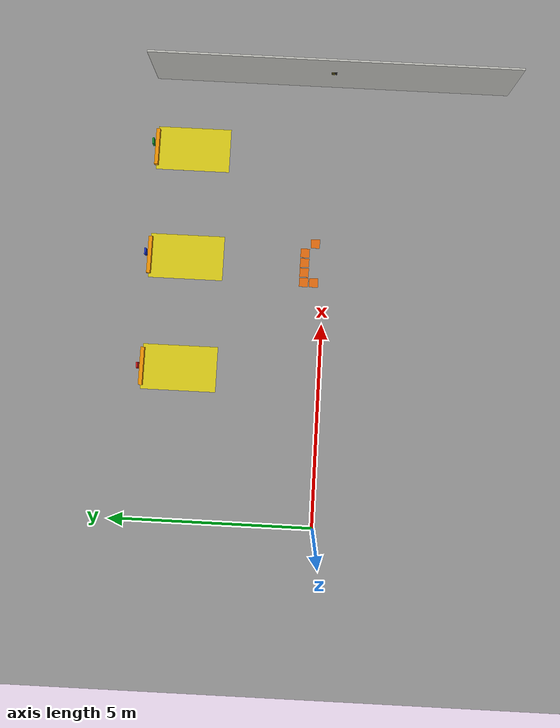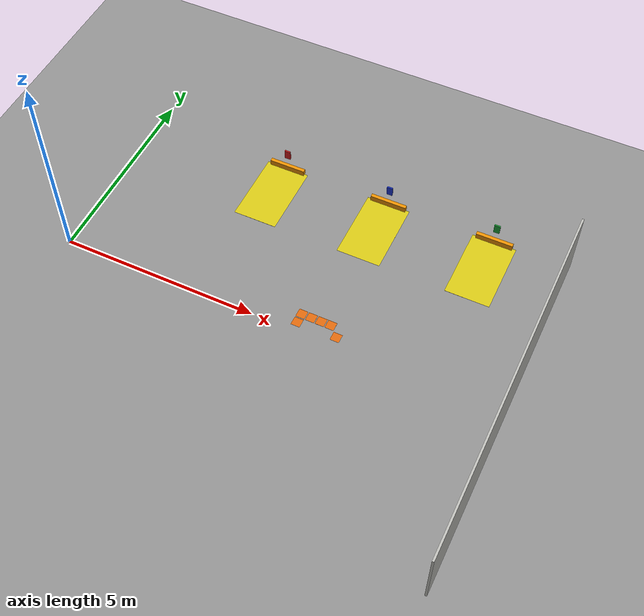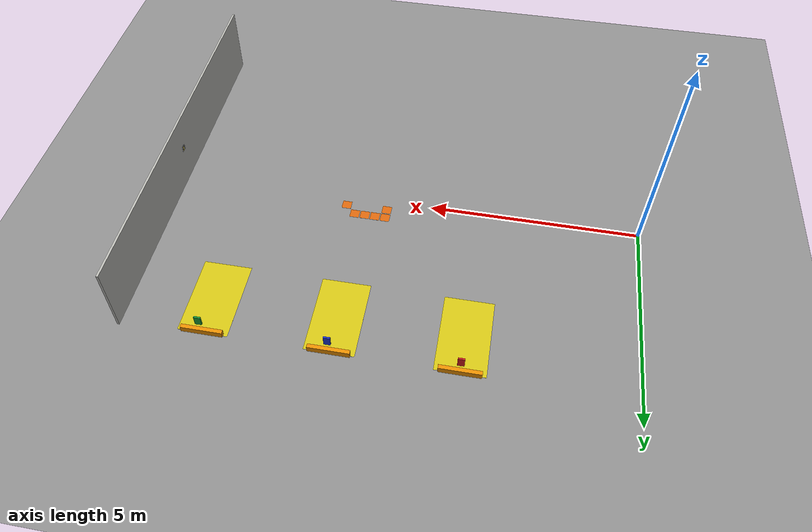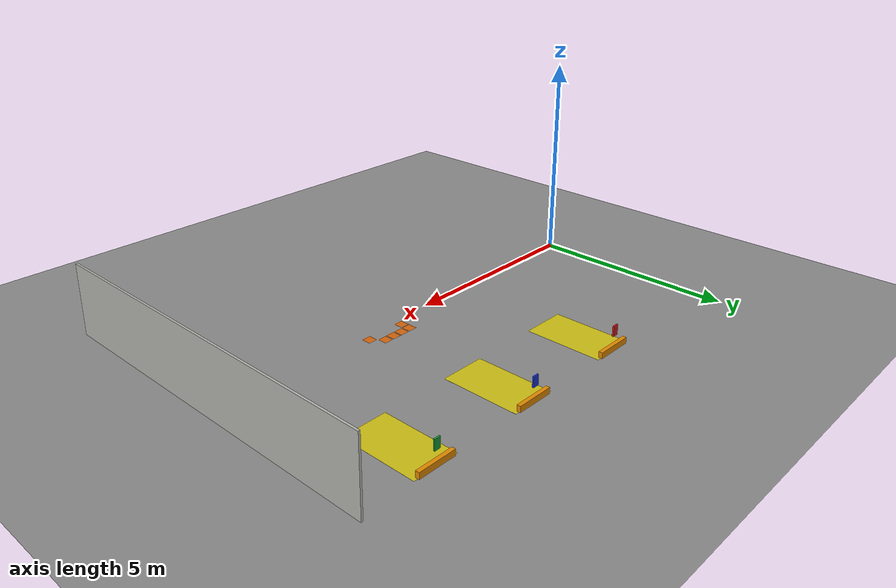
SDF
<sdf version="1.9">
 <world name="industrial_warehouse_large">
  <model name="ground_plane">
   <static>true</static>
   <pose>-0.46875 0 0 0 0 0</pose>
   <link name="link">
    <collision name="col">
     <geometry><plane><normal>0 0 1</normal><size>50 50</size></plane></geometry>
     <surface><friction><ode><mu>1.8</mu><mu2>1.8</mu2></ode></friction></surface>
    </collision>
    <visual name="vis">
     <geometry><plane><normal>0 0 1</normal><size>24.1875 9.5</size></plane></geometry>
     <material><ambient>0.55 0.55 0.55 1</ambient><diffuse>0.55 0.55 0.55 1</diffuse></material>
    </visual>
   </link>
  </model>
  <model name="wall_east">
   <static>true</static>
   <pose>11.25 0 0.875 0 0 0</pose>
   <link name="link">
    <collision name="col"><geometry><box><size>0.05 9.1 1.75</size></box></geometry></collision>
    <visual name="vis">
     <geometry><box><size>0.05 9.1 1.75</size></box></geometry>
     <material><ambient>0.72 0.72 0.70 1</ambient><diffuse>0.72 0.72 0.70 1</diffuse></material>
    </visual>
   </link>
  </model>
  <model name="dock_bumper_1">
   <static>true</static>
   <pose>3.75 4.425 0.075 0 0 0</pose>
   <link name="link">
    <collision name="col"><geometry><box><size>0.9375 0.09375 0.15</size></box></geometry></collision>
    <visual name="vis">
     <geometry><box><size>0.9375 0.09375 0.15</size></box></geometry>
     <material><ambient>0.9 0.55 0.0 1</ambient><diffuse>0.9 0.55 0.0 1</diffuse></material>
    </visual>
   </link>
  </model>
  <model name="dock_bumper_2">
   <static>true</static>
   <pose>6.5625 4.425 0.075 0 0 0</pose>
   <link name="link">
    <collision name="col"><geometry><box><size>0.9375 0.09375 0.15</size></box></geometry></collision>
    <visual name="vis">
     <geometry><box><size>0.9375 0.09375 0.15</size></box></geometry>
     <material><ambient>0.9 0.55 0.0 1</ambient><diffuse>0.9 0.55 0.0 1</diffuse></material>
    </visual>
   </link>
  </model>
  <model name="dock_bumper_3">
   <static>true</static>
   <pose>9.375 4.425 0.075 0 0 0</pose>
   <link name="link">
    <collision name="col"><geometry><box><size>0.9375 0.09375 0.15</size></box></geometry></collision>
    <visual name="vis">
     <geometry><box><size>0.9375 0.09375 0.15</size></box></geometry>
     <material><ambient>0.9 0.55 0.0 1</ambient><diffuse>0.9 0.55 0.0 1</diffuse></material>
    </visual>
   </link>
  </model>
  <model name="dock_mark_1">
   <static>true</static>
   <pose>3.75 3.5 0.00025 0 0 0</pose>
   <link name="link">
    <visual name="vis">
     <geometry><box><size>1.125 1.875 0.0005</size></box></geometry>
     <material><ambient>0.82 0.76 0.08 1</ambient><diffuse>0.82 0.76 0.08 1</diffuse></material>
    </visual>
   </link>
  </model>
  <model name="dock_mark_2">
   <static>true</static>
   <pose>6.5625 3.5 0.00025 0 0 0</pose>
   <link name="link">
    <visual name="vis">
     <geometry><box><size>1.125 1.875 0.0005</size></box></geometry>
     <material><ambient>0.82 0.76 0.08 1</ambient><diffuse>0.82 0.76 0.08 1</diffuse></material>
    </visual>
   </link>
  </model>
  <model name="dock_mark_3">
   <static>true</static>
   <pose>9.375 3.5 0.00025 0 0 0</pose>
   <link name="link">
    <visual name="vis">
     <geometry><box><size>1.125 1.875 0.0005</size></box></geometry>
     <material><ambient>0.82 0.76 0.08 1</ambient><diffuse>0.82 0.76 0.08 1</diffuse></material>
    </visual>
   </link>
  </model>
  <model name="sign_dock_1">
   <static>true</static>
   <pose>3.75 4.45 0.5 0 0 0</pose>
   <link name="link">
    <collision name="col"><geometry><box><size>0.15 0.0375 0.25</size></box></geometry></collision>
    <visual name="vis">
     <geometry><box><size>0.15 0.0375 0.25</size></box></geometry>
     <material><ambient>0.8 0.1 0.1 1</ambient><diffuse>0.8 0.1 0.1 1</diffuse></material>
    </visual>
   </link>
  </model>
  <model name="sign_dock_2">
   <static>true</static>
   <pose>6.5625 4.45 0.5 0 0 0</pose>
   <link name="link">
    <collision name="col"><geometry><box><size>0.15 0.0375 0.25</size></box></geometry></collision>
    <visual name="vis">
     <geometry><box><size>0.15 0.0375 0.25</size></box></geometry>
     <material><ambient>0.1 0.2 0.8 1</ambient><diffuse>0.1 0.2 0.8 1</diffuse></material>
    </visual>
   </link>
  </model>
  <model name="sign_dock_3">
   <static>true</static>
   <pose>9.375 4.45 0.5 0 0 0</pose>
   <link name="link">
    <collision name="col"><geometry><box><size>0.15 0.0375 0.25</size></box></geometry></collision>
    <visual name="vis">
     <geometry><box><size>0.15 0.0375 0.25</size></box></geometry>
     <material><ambient>0.1 0.6 0.2 1</ambient><diffuse>0.1 0.6 0.2 1</diffuse></material>
    </visual>
   </link>
  </model>
  <model name="compass_east_plate">
   <static>true</static>
   <pose>11.2 0 1 0 0 0</pose>
   <link name="link">
    <collision name="col"><geometry><box><size>0.0075 0.1375 0.1375</size></box></geometry></collision>
    <visual name="vis">
     <geometry><box><size>0.0075 0.1375 0.1375</size></box></geometry>
     <material><ambient>0.15 0.15 0.17 1</ambient><diffuse>0.15 0.15 0.17 1</diffuse></material>
    </visual>
   </link>
  </model>
  <model name="compass_east_px3">
   <static>true</static>
   <pose>11.1875 0 1.045 0 0 0</pose>
   <link name="link">
    <visual name="vis">
     <geometry><box><size>0.005 0.0175 0.0175</size></box></geometry>
     <material><ambient>0.95 0.85 0.1 1</ambient><diffuse>0.95 0.85 0.1 1</diffuse></material>
    </visual>
   </link>
  </model>
  <model name="compass_east_px4">
   <static>true</static>
   <pose>11.1875 0.0225 1.045 0 0 0</pose>
   <link name="link">
    <visual name="vis">
     <geometry><box><size>0.005 0.0175 0.0175</size></box></geometry>
     <material><ambient>0.95 0.85 0.1 1</ambient><diffuse>0.95 0.85 0.1 1</diffuse></material>
    </visual>
   </link>
  </model>
  <model name="compass_east_px5">
   <static>true</static>
   <pose>11.1875 0.045 1.045 0 0 0</pose>
   <link name="link">
    <visual name="vis">
     <geometry><box><size>0.005 0.0175 0.0175</size></box></geometry>
     <material><ambient>0.95 0.85 0.1 1</ambient><diffuse>0.95 0.85 0.1 1</diffuse></material>
    </visual>
   </link>
  </model>
  <model name="compass_east_px9">
   <static>true</static>
   <pose>11.1875 0 1 0 0 0</pose>
   <link name="link">
    <visual name="vis">
     <geometry><box><size>0.005 0.0175 0.0175</size></box></geometry>
     <material><ambient>0.95 0.85 0.1 1</ambient><diffuse>0.95 0.85 0.1 1</diffuse></material>
    </visual>
   </link>
  </model>
  <model name="compass_east_px10">
   <static>true</static>
   <pose>11.1875 0.0225 1 0 0 0</pose>
   <link name="link">
    <visual name="vis">
     <geometry><box><size>0.005 0.0175 0.0175</size></box></geometry>
     <material><ambient>0.95 0.85 0.1 1</ambient><diffuse>0.95 0.85 0.1 1</diffuse></material>
    </visual>
   </link>
  </model>
  <model name="compass_east_px14">
   <static>true</static>
   <pose>11.1875 0 0.955 0 0 0</pose>
   <link name="link">
    <visual name="vis">
     <geometry><box><size>0.005 0.0175 0.0175</size></box></geometry>
     <material><ambient>0.95 0.85 0.1 1</ambient><diffuse>0.95 0.85 0.1 1</diffuse></material>
    </visual>
   </link>
  </model>
  <model name="compass_east_px15">
   <static>true</static>
   <pose>11.1875 0.0225 0.955 0 0 0</pose>
   <link name="link">
    <visual name="vis">
     <geometry><box><size>0.005 0.0175 0.0175</size></box></geometry>
     <material><ambient>0.95 0.85 0.1 1</ambient><diffuse>0.95 0.85 0.1 1</diffuse></material>
    </visual>
   </link>
  </model>
  <model name="compass_east_px16">
   <static>true</static>
   <pose>11.1875 0.045 0.955 0 0 0</pose>
   <link name="link">
    <visual name="vis">
     <geometry><box><size>0.005 0.0175 0.0175</size></box></geometry>
     <material><ambient>0.95 0.85 0.1 1</ambient><diffuse>0.95 0.85 0.1 1</diffuse></material>
    </visual>
   </link>
  </model>
  <model name="room_label_B_px1">
   <static>true</static>
   <pose>6.0625 0.5 0.00025 0 0 0</pose>
   <link name="link">
    <visual name="vis">
     <geometry><box><size>0.225 0.225 0.0005</size></box></geometry>
     <material><ambient>0.85 0.4 0.05 1</ambient><diffuse>0.85 0.4 0.05 1</diffuse></material>
    </visual>
   </link>
  </model>
  <model name="room_label_B_px2">
   <static>true</static>
   <pose>6.3125 0.5 0.00025 0 0 0</pose>
   <link name="link">
    <visual name="vis">
     <geometry><box><size>0.225 0.225 0.0005</size></box></geometry>
     <material><ambient>0.85 0.4 0.05 1</ambient><diffuse>0.85 0.4 0.05 1</diffuse></material>
    </visual>
   </link>
  </model>
  <model name="room_label_B_px3">
   <static>true</static>
   <pose>6.5625 0.5 0.00025 0 0 0</pose>
   <link name="link">
    <visual name="vis">
     <geometry><box><size>0.225 0.225 0.0005</size></box></geometry>
     <material><ambient>0.85 0.4 0.05 1</ambient><diffuse>0.85 0.4 0.05 1</diffuse></material>
    </visual>
   </link>
  </model>
  <model name="room_label_B_px4">
   <static>true</static>
   <pose>6.8125 0.5 0.00025 0 0 0</pose>
   <link name="link">
    <visual name="vis">
     <geometry><box><size>0.225 0.225 0.0005</size></box></geometry>
     <material><ambient>0.85 0.4 0.05 1</ambient><diffuse>0.85 0.4 0.05 1</diffuse></material>
    </visual>
   </link>
  </model>
  <model name="room_label_B_px5">
   <static>true</static>
   <pose>6.0625 0.25 0.00025 0 0 0</pose>
   <link name="link">
    <visual name="vis">
     <geometry><box><size>0.225 0.225 0.0005</size></box></geometry>
     <material><ambient>0.85 0.4 0.05 1</ambient><diffuse>0.85 0.4 0.05 1</diffuse></material>
    </visual>
   </link>
  </model>
  <model name="room_label_B_px6">
   <static>true</static>
   <pose>7.0625 0.25 0.00025 0 0 0</pose>
   <link name="link">
    <visual name="vis">
     <geometry><box><size>0.225 0.225 0.0005</size></box></geometry>
     <material><ambient>0.85 0.4 0.05 1</ambient><diffuse>0.85 0.4 0.05 1</diffuse></material>
    </visual>
   </link>
  </model>
 </world>
</sdf>
